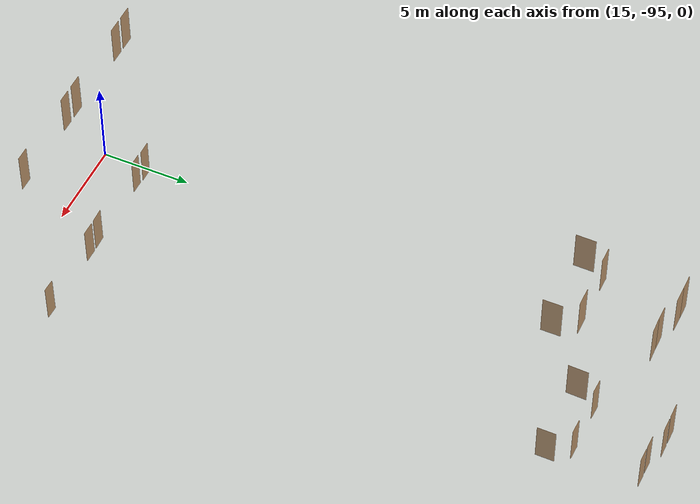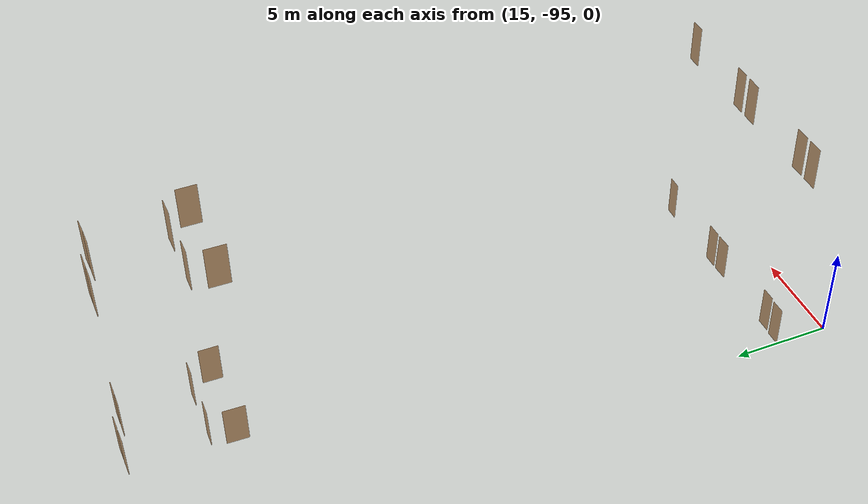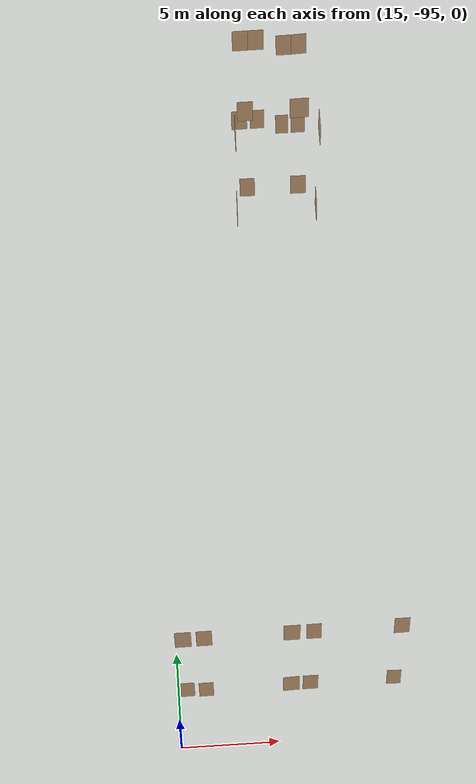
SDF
<sdf version="1.7">
 <world name="sim_world">
  <model name="part5_3">
   <pose>20.173143498738547 -60.075175110173454 0.0 0 0 -3.1320734402905437</pose>
   <link name="right">
    <pose>0 0 1.11 0 0 0</pose>
    <visual name="right_visual">
     <geometry><box><size>0.8412739938981753 0.03 2.2</size></box></geometry>
     <material>
      <ambient>0.5 0.25 0 0.6</ambient>
      <diffuse>0.5 0.25 0 0.6</diffuse>
      <pbr><metal><metalness>0.0</metalness></metal></pbr>
     </material>
    </visual>
    <collision name="right_collision">
     <geometry><box><size>0.8412739938981753 0.03 2.2</size></box></geometry>
     <surface><contact><collide_bitmask>0x02</collide_bitmask></contact></surface>
    </collision>
    <inertial>
     <mass>50.0</mass>
     <inertia><ixx>20.17041666666667</ixx><iyy>23.11559138670578</iyy><izz>2.952674720039113</izz></inertia>
    </inertial>
   </link>
   <joint name="right_joint" type="revolute">
    <parent>world</parent>
    <child>right</child>
    <axis><xyz>0 0 -1</xyz><limit><lower>0</lower><upper>1.57</upper></limit></axis>
    <pose>0.42563699694908763 0 0 0 0 0</pose>
   </joint>
   <plugin name="register_component" filename="libregister_component.so">
    <component name="Door">
     <v_max_door>0.5</v_max_door>
     <a_max_door>0.3</a_max_door>
     <a_nom_door>0.15</a_nom_door>
     <dx_min_door>0.01</dx_min_door>
     <f_max_door>500.0</f_max_door>
     <ros_interface>true</ros_interface>
     <door name="part5_3" type="SwingDoor" left_joint_name="empty_joint" right_joint_name="right_joint"/>
    </component>
   </plugin>
  </model>
  <model name="part5_4">
   <pose>21.1585172209726 -60.06836349378341 0.0 0 0 -3.134354941226034</pose>
   <link name="right">
    <pose>0 0 1.11 0 0 0</pose>
    <visual name="right_visual">
     <geometry><box><size>0.7526642721148585 0.03 2.2</size></box></geometry>
     <material>
      <ambient>0.5 0.25 0 0.6</ambient>
      <diffuse>0.5 0.25 0 0.6</diffuse>
      <pbr><metal><metalness>0.0</metalness></metal></pbr>
     </material>
    </visual>
    <collision name="right_collision">
     <geometry><box><size>0.7526642721148585 0.03 2.2</size></box></geometry>
     <surface><contact><collide_bitmask>0x02</collide_bitmask></contact></surface>
    </collision>
    <inertial>
     <mass>50.0</mass>
     <inertia><ixx>20.17041666666667</ixx><iyy>22.527097943825797</iyy><izz>2.3641812771591244</izz></inertia>
    </inertial>
   </link>
   <joint name="right_joint" type="revolute">
    <parent>world</parent>
    <child>right</child>
    <axis><xyz>0 0 1</xyz><limit><lower>0</lower><upper>1.57</upper></limit></axis>
    <pose>0.38133213605742927 0 0 0 0 0</pose>
   </joint>
   <plugin name="register_component" filename="libregister_component.so">
    <component name="Door">
     <v_max_door>0.5</v_max_door>
     <a_max_door>0.3</a_max_door>
     <a_nom_door>0.15</a_nom_door>
     <dx_min_door>0.01</dx_min_door>
     <f_max_door>500.0</f_max_door>
     <ros_interface>true</ros_interface>
     <door name="part5_4" type="SwingDoor" left_joint_name="empty_joint" right_joint_name="right_joint"/>
    </component>
   </plugin>
  </model>
  <model name="part5_5">
   <pose>22.475253214732483 -60.4579173479677 0.0 0 0 3.1318064891371975</pose>
   <link name="right">
    <pose>0 0 1.11 0 0 0</pose>
    <visual name="right_visual">
     <geometry><box><size>0.6753985658869284 0.03 2.2</size></box></geometry>
     <material>
      <ambient>0.5 0.25 0 0.6</ambient>
      <diffuse>0.5 0.25 0 0.6</diffuse>
      <pbr><metal><metalness>0.0</metalness></metal></pbr>
     </material>
    </visual>
    <collision name="right_collision">
     <geometry><box><size>0.6753985658869284 0.03 2.2</size></box></geometry>
     <surface><contact><collide_bitmask>0x02</collide_bitmask></contact></surface>
    </collision>
    <inertial>
     <mass>50.0</mass>
     <inertia><ixx>20.17041666666667</ixx><iyy>22.067346761675502</iyy><izz>1.9044300950088315</izz></inertia>
    </inertial>
   </link>
   <joint name="right_joint" type="revolute">
    <parent>world</parent>
    <child>right</child>
    <axis><xyz>0 0 -1</xyz><limit><lower>0</lower><upper>1.57</upper></limit></axis>
    <pose>0.3426992829434642 0 0 0 0 0</pose>
   </joint>
   <plugin name="register_component" filename="libregister_component.so">
    <component name="Door">
     <v_max_door>0.5</v_max_door>
     <a_max_door>0.3</a_max_door>
     <a_nom_door>0.15</a_nom_door>
     <dx_min_door>0.01</dx_min_door>
     <f_max_door>500.0</f_max_door>
     <ros_interface>true</ros_interface>
     <door name="part5_5" type="SwingDoor" left_joint_name="empty_joint" right_joint_name="right_joint"/>
    </component>
   </plugin>
  </model>
  <model name="part5_6">
   <pose>23.359848711436015 -60.46050881097593 0.0 0 0 -3.1395744714216227</pose>
   <link name="right">
    <pose>0 0 1.11 0 0 0</pose>
    <visual name="right_visual">
     <geometry><box><size>0.7453287625419571 0.03 2.2</size></box></geometry>
     <material>
      <ambient>0.5 0.25 0 0.6</ambient>
      <diffuse>0.5 0.25 0 0.6</diffuse>
      <pbr><metal><metalness>0.0</metalness></metal></pbr>
     </material>
    </visual>
    <collision name="right_collision">
     <geometry><box><size>0.7453287625419571 0.03 2.2</size></box></geometry>
     <surface><contact><collide_bitmask>0x02</collide_bitmask></contact></surface>
    </collision>
    <inertial>
     <mass>50.0</mass>
     <inertia><ixx>20.17041666666667</ixx><iyy>22.481312351134694</iyy><izz>2.3183956844680216</izz></inertia>
    </inertial>
   </link>
   <joint name="right_joint" type="revolute">
    <parent>world</parent>
    <child>right</child>
    <axis><xyz>0 0 1</xyz><limit><lower>0</lower><upper>1.57</upper></limit></axis>
    <pose>0.37766438127097857 0 0 0 0 0</pose>
   </joint>
   <plugin name="register_component" filename="libregister_component.so">
    <component name="Door">
     <v_max_door>0.5</v_max_door>
     <a_max_door>0.3</a_max_door>
     <a_nom_door>0.15</a_nom_door>
     <dx_min_door>0.01</dx_min_door>
     <f_max_door>500.0</f_max_door>
     <ros_interface>true</ros_interface>
     <door name="part5_6" type="SwingDoor" left_joint_name="empty_joint" right_joint_name="right_joint"/>
    </component>
   </plugin>
  </model>
  <model name="part5_2">
   <pose>20.356254830741022 -64.11535419415983 0.0 0 0 3.1157790251669653</pose>
   <link name="right">
    <pose>0 0 1.11 0 0 0</pose>
    <visual name="right_visual">
     <geometry><box><size>0.8000579363908907 0.03 2.2</size></box></geometry>
     <material>
      <ambient>0.5 0.25 0 0.6</ambient>
      <diffuse>0.5 0.25 0 0.6</diffuse>
      <pbr><metal><metalness>0.0</metalness></metal></pbr>
     </material>
    </visual>
    <collision name="right_collision">
     <geometry><box><size>0.8000579363908907 0.03 2.2</size></box></geometry>
     <surface><contact><collide_bitmask>0x02</collide_bitmask></contact></surface>
    </collision>
    <inertial>
     <mass>50.0</mass>
     <inertia><ixx>20.17041666666667</ixx><iyy>22.833719589925213</iyy><izz>2.6708029232585444</izz></inertia>
    </inertial>
   </link>
   <joint name="right_joint" type="revolute">
    <parent>world</parent>
    <child>right</child>
    <axis><xyz>0 0 1</xyz><limit><lower>0</lower><upper>1.57</upper></limit></axis>
    <pose>0.40502896819544537 0 0 0 0 0</pose>
   </joint>
   <plugin name="register_component" filename="libregister_component.so">
    <component name="Door">
     <v_max_door>0.5</v_max_door>
     <a_max_door>0.3</a_max_door>
     <a_nom_door>0.15</a_nom_door>
     <dx_min_door>0.01</dx_min_door>
     <f_max_door>500.0</f_max_door>
     <ros_interface>true</ros_interface>
     <door name="part5_2" type="SwingDoor" left_joint_name="empty_joint" right_joint_name="right_joint"/>
    </component>
   </plugin>
  </model>
  <model name="part5_1">
   <pose>19.7338704610806 -65.35273365350986 0.0 0 0 1.5427332224343389</pose>
   <link name="right">
    <pose>0 0 1.11 0 0 0</pose>
    <visual name="right_visual">
     <geometry><box><size>1.1234371194524144 0.03 2.2</size></box></geometry>
     <material>
      <ambient>0.5 0.25 0 0.6</ambient>
      <diffuse>0.5 0.25 0 0.6</diffuse>
      <pbr><metal><metalness>0.0</metalness></metal></pbr>
     </material>
    </visual>
    <collision name="right_collision">
     <geometry><box><size>1.1234371194524144 0.03 2.2</size></box></geometry>
     <surface><contact><collide_bitmask>0x02</collide_bitmask></contact></surface>
    </collision>
    <inertial>
     <mass>50.0</mass>
     <inertia><ixx>20.17041666666667</ixx><iyy>25.42546233901475</iyy><izz>5.262545672348077</izz></inertia>
    </inertial>
   </link>
   <joint name="right_joint" type="revolute">
    <parent>world</parent>
    <child>right</child>
    <axis><xyz>0 0 -1</xyz><limit><lower>0</lower><upper>1.57</upper></limit></axis>
    <pose>0.5667185597262072 0 0 0 0 0</pose>
   </joint>
   <plugin name="register_component" filename="libregister_component.so">
    <component name="Door">
     <v_max_door>0.5</v_max_door>
     <a_max_door>0.3</a_max_door>
     <a_nom_door>0.15</a_nom_door>
     <dx_min_door>0.01</dx_min_door>
     <f_max_door>500.0</f_max_door>
     <ros_interface>true</ros_interface>
     <door name="part5_1" type="SwingDoor" left_joint_name="empty_joint" right_joint_name="right_joint"/>
    </component>
   </plugin>
  </model>
  <model name="part5_7">
   <pose>23.12539752869158 -64.13151272821115 0.0 0 0 3.127977500458686</pose>
   <link name="right">
    <pose>0 0 1.11 0 0 0</pose>
    <visual name="right_visual">
     <geometry><box><size>0.8279786917823205 0.03 2.2</size></box></geometry>
     <material>
      <ambient>0.5 0.25 0 0.6</ambient>
      <diffuse>0.5 0.25 0 0.6</diffuse>
      <pbr><metal><metalness>0.0</metalness></metal></pbr>
     </material>
    </visual>
    <collision name="right_collision">
     <geometry><box><size>0.8279786917823205 0.03 2.2</size></box></geometry>
     <surface><contact><collide_bitmask>0x02</collide_bitmask></contact></surface>
    </collision>
    <inertial>
     <mass>50.0</mass>
     <inertia><ixx>20.17041666666667</ixx><iyy>23.023119641856518</iyy><izz>2.860202975189846</izz></inertia>
    </inertial>
   </link>
   <joint name="right_joint" type="revolute">
    <parent>world</parent>
    <child>right</child>
    <axis><xyz>0 0 -1</xyz><limit><lower>0</lower><upper>1.57</upper></limit></axis>
    <pose>0.41898934589116027 0 0 0 0 0</pose>
   </joint>
   <plugin name="register_component" filename="libregister_component.so">
    <component name="Door">
     <v_max_door>0.5</v_max_door>
     <a_max_door>0.3</a_max_door>
     <a_nom_door>0.15</a_nom_door>
     <dx_min_door>0.01</dx_min_door>
     <f_max_door>500.0</f_max_door>
     <ros_interface>true</ros_interface>
     <door name="part5_7" type="SwingDoor" left_joint_name="empty_joint" right_joint_name="right_joint"/>
    </component>
   </plugin>
  </model>
  <model name="part5_8_end">
   <pose>24.011661831295143 -65.3474063115982 0.0 0 0 1.565736929296682</pose>
   <link name="right">
    <pose>0 0 1.11 0 0 0</pose>
    <visual name="right_visual">
     <geometry><box><size>1.0239347653814936 0.03 2.2</size></box></geometry>
     <material>
      <ambient>0.5 0.25 0 0.6</ambient>
      <diffuse>0.5 0.25 0 0.6</diffuse>
      <pbr><metal><metalness>0.0</metalness></metal></pbr>
     </material>
    </visual>
    <collision name="right_collision">
     <geometry><box><size>1.0239347653814936 0.03 2.2</size></box></geometry>
     <surface><contact><collide_bitmask>0x02</collide_bitmask></contact></surface>
    </collision>
    <inertial>
     <mass>50.0</mass>
     <inertia><ixx>20.17041666666667</ixx><iyy>24.53517668232023</iyy><izz>4.37226001565356</izz></inertia>
    </inertial>
   </link>
   <joint name="right_joint" type="revolute">
    <parent>world</parent>
    <child>right</child>
    <axis><xyz>0 0 1</xyz><limit><lower>0</lower><upper>1.57</upper></limit></axis>
    <pose>0.5169673826907468 0 0 0 0 0</pose>
   </joint>
   <plugin name="register_component" filename="libregister_component.so">
    <component name="Door">
     <v_max_door>0.5</v_max_door>
     <a_max_door>0.3</a_max_door>
     <a_nom_door>0.15</a_nom_door>
     <dx_min_door>0.01</dx_min_door>
     <f_max_door>500.0</f_max_door>
     <ros_interface>true</ros_interface>
     <door name="part5_8_end" type="SwingDoor" left_joint_name="empty_joint" right_joint_name="right_joint"/>
    </component>
   </plugin>
  </model>
  <model name="part4_5">
   <pose>26.091162467950667 -92.28202981543757 0.0 0 0 3.1147662105068084</pose>
   <link name="right">
    <pose>0 0 1.11 0 0 0</pose>
    <visual name="right_visual">
     <geometry><box><size>0.7162400117105202 0.03 2.2</size></box></geometry>
     <material>
      <ambient>0.5 0.25 0 0.6</ambient>
      <diffuse>0.5 0.25 0 0.6</diffuse>
      <pbr><metal><metalness>0.0</metalness></metal></pbr>
     </material>
    </visual>
    <collision name="right_collision">
     <geometry><box><size>0.7162400117105202 0.03 2.2</size></box></geometry>
     <surface><contact><collide_bitmask>0x02</collide_bitmask></contact></surface>
    </collision>
    <inertial>
     <mass>50.0</mass>
     <inertia><ixx>20.17041666666667</ixx><iyy>22.30416564322953</iyy><izz>2.141248976562859</izz></inertia>
    </inertial>
   </link>
   <joint name="right_joint" type="revolute">
    <parent>world</parent>
    <child>right</child>
    <axis><xyz>0 0 1</xyz><limit><lower>0</lower><upper>1.57</upper></limit></axis>
    <pose>0.3631200058552601 0 0 0 0 0</pose>
   </joint>
   <plugin name="register_component" filename="libregister_component.so">
    <component name="Door">
     <v_max_door>0.5</v_max_door>
     <a_max_door>0.3</a_max_door>
     <a_nom_door>0.15</a_nom_door>
     <dx_min_door>0.01</dx_min_door>
     <f_max_door>500.0</f_max_door>
     <ros_interface>true</ros_interface>
     <door name="part4_5" type="SwingDoor" left_joint_name="empty_joint" right_joint_name="right_joint"/>
    </component>
   </plugin>
  </model>
  <model name="part4_4">
   <pose>21.79289613303953 -92.27025189687387 0.0 0 0 3.1364429718043936</pose>
   <link name="right">
    <pose>0 0 1.11 0 0 0</pose>
    <visual name="right_visual">
     <geometry><box><size>0.7814577387012437 0.03 2.2</size></box></geometry>
     <material>
      <ambient>0.5 0.25 0 0.6</ambient>
      <diffuse>0.5 0.25 0 0.6</diffuse>
      <pbr><metal><metalness>0.0</metalness></metal></pbr>
     </material>
    </visual>
    <collision name="right_collision">
     <geometry><box><size>0.7814577387012437 0.03 2.2</size></box></geometry>
     <surface><contact><collide_bitmask>0x02</collide_bitmask></contact></surface>
    </collision>
    <inertial>
     <mass>50.0</mass>
     <inertia><ixx>20.17041666666667</ixx><iyy>22.71115082240026</iyy><izz>2.548234155733589</izz></inertia>
    </inertial>
   </link>
   <joint name="right_joint" type="revolute">
    <parent>world</parent>
    <child>right</child>
    <axis><xyz>0 0 -1</xyz><limit><lower>0</lower><upper>1.57</upper></limit></axis>
    <pose>0.39572886935062185 0 0 0 0 0</pose>
   </joint>
   <plugin name="register_component" filename="libregister_component.so">
    <component name="Door">
     <v_max_door>0.5</v_max_door>
     <a_max_door>0.3</a_max_door>
     <a_nom_door>0.15</a_nom_door>
     <dx_min_door>0.01</dx_min_door>
     <f_max_door>500.0</f_max_door>
     <ros_interface>true</ros_interface>
     <door name="part4_4" type="SwingDoor" left_joint_name="empty_joint" right_joint_name="right_joint"/>
    </component>
   </plugin>
  </model>
  <model name="part4_2">
   <pose>16.429426178272443 -92.29821241880475 0.0 0 0 -3.135646432111975</pose>
   <link name="right">
    <pose>0 0 1.11 0 0 0</pose>
    <visual name="right_visual">
     <geometry><box><size>0.7429015106224636 0.03 2.2</size></box></geometry>
     <material>
      <ambient>0.5 0.25 0 0.6</ambient>
      <diffuse>0.5 0.25 0 0.6</diffuse>
      <pbr><metal><metalness>0.0</metalness></metal></pbr>
     </material>
    </visual>
    <collision name="right_collision">
     <geometry><box><size>0.7429015106224636 0.03 2.2</size></box></geometry>
     <surface><contact><collide_bitmask>0x02</collide_bitmask></contact></surface>
    </collision>
    <inertial>
     <mass>50.0</mass>
     <inertia><ixx>20.17041666666667</ixx><iyy>22.466261060354746</iyy><izz>2.3033443936880764</izz></inertia>
    </inertial>
   </link>
   <joint name="right_joint" type="revolute">
    <parent>world</parent>
    <child>right</child>
    <axis><xyz>0 0 -1</xyz><limit><lower>0</lower><upper>1.57</upper></limit></axis>
    <pose>0.3764507553112318 0 0 0 0 0</pose>
   </joint>
   <plugin name="register_component" filename="libregister_component.so">
    <component name="Door">
     <v_max_door>0.5</v_max_door>
     <a_max_door>0.3</a_max_door>
     <a_nom_door>0.15</a_nom_door>
     <dx_min_door>0.01</dx_min_door>
     <f_max_door>500.0</f_max_door>
     <ros_interface>true</ros_interface>
     <door name="part4_2" type="SwingDoor" left_joint_name="empty_joint" right_joint_name="right_joint"/>
    </component>
   </plugin>
  </model>
  <model name="part4_1">
   <pose>15.451168950429413 -92.25228014102731 0.0 0 0 -3.133526279514801</pose>
   <link name="right">
    <pose>0 0 1.11 0 0 0</pose>
    <visual name="right_visual">
     <geometry><box><size>0.7538886599244344 0.03 2.2</size></box></geometry>
     <material>
      <ambient>0.5 0.25 0 0.6</ambient>
      <diffuse>0.5 0.25 0 0.6</diffuse>
      <pbr><metal><metalness>0.0</metalness></metal></pbr>
     </material>
    </visual>
    <collision name="right_collision">
     <geometry><box><size>0.7538886599244344 0.03 2.2</size></box></geometry>
     <surface><contact><collide_bitmask>0x02</collide_bitmask></contact></surface>
    </collision>
    <inertial>
     <mass>50.0</mass>
     <inertia><ixx>20.17041666666667</ixx><iyy>22.534783798177752</iyy><izz>2.3718671315110815</izz></inertia>
    </inertial>
   </link>
   <joint name="right_joint" type="revolute">
    <parent>world</parent>
    <child>right</child>
    <axis><xyz>0 0 1</xyz><limit><lower>0</lower><upper>1.57</upper></limit></axis>
    <pose>0.3819443299622172 0 0 0 0 0</pose>
   </joint>
   <plugin name="register_component" filename="libregister_component.so">
    <component name="Door">
     <v_max_door>0.5</v_max_door>
     <a_max_door>0.3</a_max_door>
     <a_nom_door>0.15</a_nom_door>
     <dx_min_door>0.01</dx_min_door>
     <f_max_door>500.0</f_max_door>
     <ros_interface>true</ros_interface>
     <door name="part4_1" type="SwingDoor" left_joint_name="empty_joint" right_joint_name="right_joint"/>
    </component>
   </plugin>
  </model>
  <model name="part4_3">
   <pose>20.81063537565747 -92.2820940002799 0.0 0 0 -3.1083344110460236</pose>
   <link name="right">
    <pose>0 0 1.11 0 0 0</pose>
    <visual name="right_visual">
     <geometry><box><size>0.8248325236321878 0.03 2.2</size></box></geometry>
     <material>
      <ambient>0.5 0.25 0 0.6</ambient>
      <diffuse>0.5 0.25 0 0.6</diffuse>
      <pbr><metal><metalness>0.0</metalness></metal></pbr>
     </material>
    </visual>
    <collision name="right_collision">
     <geometry><box><size>0.8248325236321878 0.03 2.2</size></box></geometry>
     <surface><contact><collide_bitmask>0x02</collide_bitmask></contact></surface>
    </collision>
    <inertial>
     <mass>50.0</mass>
     <inertia><ixx>20.17041666666667</ixx><iyy>23.001452883506023</iyy><izz>2.838536216839349</izz></inertia>
    </inertial>
   </link>
   <joint name="right_joint" type="revolute">
    <parent>world</parent>
    <child>right</child>
    <axis><xyz>0 0 1</xyz><limit><lower>0</lower><upper>1.57</upper></limit></axis>
    <pose>0.4174162618160939 0 0 0 0 0</pose>
   </joint>
   <plugin name="register_component" filename="libregister_component.so">
    <component name="Door">
     <v_max_door>0.5</v_max_door>
     <a_max_door>0.3</a_max_door>
     <a_nom_door>0.15</a_nom_door>
     <dx_min_door>0.01</dx_min_door>
     <f_max_door>500.0</f_max_door>
     <ros_interface>true</ros_interface>
     <door name="part4_3" type="SwingDoor" left_joint_name="empty_joint" right_joint_name="right_joint"/>
    </component>
   </plugin>
  </model>
  <model name="L3_part1_18_end">
   <pose>15.452869970543336 -92.76079301687074 10.0 0 0 -3.1397299982213527</pose>
   <link name="right">
    <pose>0 0 1.11 0 0 0</pose>
    <visual name="right_visual">
     <geometry><box><size>0.8010010356325225 0.03 2.2</size></box></geometry>
     <material>
      <ambient>0.5 0.25 0 0.6</ambient>
      <diffuse>0.5 0.25 0 0.6</diffuse>
      <pbr><metal><metalness>0.0</metalness></metal></pbr>
     </material>
    </visual>
    <collision name="right_collision">
     <geometry><box><size>0.8010010356325225 0.03 2.2</size></box></geometry>
     <surface><contact><collide_bitmask>0x02</collide_bitmask></contact></surface>
    </collision>
    <inertial>
     <mass>50.0</mass>
     <inertia><ixx>20.17041666666667</ixx><iyy>22.840011079518227</iyy><izz>2.677094412851557</izz></inertia>
    </inertial>
   </link>
   <joint name="right_joint" type="revolute">
    <parent>world</parent>
    <child>right</child>
    <axis><xyz>0 0 1</xyz><limit><lower>0</lower><upper>1.57</upper></limit></axis>
    <pose>0.40550051781626123 0 0 0 0 0</pose>
   </joint>
   <plugin name="register_component" filename="libregister_component.so">
    <component name="Door">
     <v_max_door>0.5</v_max_door>
     <a_max_door>0.3</a_max_door>
     <a_nom_door>0.15</a_nom_door>
     <dx_min_door>0.01</dx_min_door>
     <f_max_door>500.0</f_max_door>
     <ros_interface>true</ros_interface>
     <door name="L3_part1_18_end" type="SwingDoor" left_joint_name="empty_joint" right_joint_name="right_joint"/>
    </component>
   </plugin>
  </model>
  <model name="L3_part1_17">
   <pose>16.489145478803934 -92.75886279049976 10.0 0 0 -3.1397299982213265</pose>
   <link name="right">
    <pose>0 0 1.11 0 0 0</pose>
    <visual name="right_visual">
     <geometry><box><size>0.770966353774227 0.03 2.2</size></box></geometry>
     <material>
      <ambient>0.5 0.25 0 0.6</ambient>
      <diffuse>0.5 0.25 0 0.6</diffuse>
      <pbr><metal><metalness>0.0</metalness></metal></pbr>
     </material>
    </visual>
    <collision name="right_collision">
     <geometry><box><size>0.770966353774227 0.03 2.2</size></box></geometry>
     <surface><contact><collide_bitmask>0x02</collide_bitmask></contact></surface>
    </collision>
    <inertial>
     <mass>50.0</mass>
     <inertia><ixx>20.17041666666667</ixx><iyy>22.64328799438303</iyy><izz>2.4803713277163606</izz></inertia>
    </inertial>
   </link>
   <joint name="right_joint" type="revolute">
    <parent>world</parent>
    <child>right</child>
    <axis><xyz>0 0 -1</xyz><limit><lower>0</lower><upper>1.57</upper></limit></axis>
    <pose>0.3904831768871135 0 0 0 0 0</pose>
   </joint>
   <plugin name="register_component" filename="libregister_component.so">
    <component name="Door">
     <v_max_door>0.5</v_max_door>
     <a_max_door>0.3</a_max_door>
     <a_nom_door>0.15</a_nom_door>
     <dx_min_door>0.01</dx_min_door>
     <f_max_door>500.0</f_max_door>
     <ros_interface>true</ros_interface>
     <door name="L3_part1_17" type="SwingDoor" left_joint_name="empty_joint" right_joint_name="right_joint"/>
    </component>
   </plugin>
  </model>
  <model name="L3_part1_16">
   <pose>20.806401356582032 -92.75082122136195 10.0 0 0 -3.139729998221315</pose>
   <link name="right">
    <pose>0 0 1.11 0 0 0</pose>
    <visual name="right_visual">
     <geometry><box><size>0.7980282645394955 0.03 2.2</size></box></geometry>
     <material>
      <ambient>0.5 0.25 0 0.6</ambient>
      <diffuse>0.5 0.25 0 0.6</diffuse>
      <pbr><metal><metalness>0.0</metalness></metal></pbr>
     </material>
    </visual>
    <collision name="right_collision">
     <geometry><box><size>0.7980282645394955 0.03 2.2</size></box></geometry>
     <surface><contact><collide_bitmask>0x02</collide_bitmask></contact></surface>
    </collision>
    <inertial>
     <mass>50.0</mass>
     <inertia><ixx>20.17041666666667</ixx><iyy>22.820204629183</iyy><izz>2.657287962516329</izz></inertia>
    </inertial>
   </link>
   <joint name="right_joint" type="revolute">
    <parent>world</parent>
    <child>right</child>
    <axis><xyz>0 0 1</xyz><limit><lower>0</lower><upper>1.57</upper></limit></axis>
    <pose>0.40401413226974775 0 0 0 0 0</pose>
   </joint>
   <plugin name="register_component" filename="libregister_component.so">
    <component name="Door">
     <v_max_door>0.5</v_max_door>
     <a_max_door>0.3</a_max_door>
     <a_nom_door>0.15</a_nom_door>
     <dx_min_door>0.01</dx_min_door>
     <f_max_door>500.0</f_max_door>
     <ros_interface>true</ros_interface>
     <door name="L3_part1_16" type="SwingDoor" left_joint_name="empty_joint" right_joint_name="right_joint"/>
    </component>
   </plugin>
  </model>
  <model name="L3_part1_15">
   <pose>21.884957997748018 -92.7488122397207 10.0 0 0 -3.139729998221307</pose>
   <link name="right">
    <pose>0 0 1.11 0 0 0</pose>
    <visual name="right_visual">
     <geometry><box><size>0.7243067727055034 0.03 2.2</size></box></geometry>
     <material>
      <ambient>0.5 0.25 0 0.6</ambient>
      <diffuse>0.5 0.25 0 0.6</diffuse>
      <pbr><metal><metalness>0.0</metalness></metal></pbr>
     </material>
    </visual>
    <collision name="right_collision">
     <geometry><box><size>0.7243067727055034 0.03 2.2</size></box></geometry>
     <surface><contact><collide_bitmask>0x02</collide_bitmask></contact></surface>
    </collision>
    <inertial>
     <mass>50.0</mass>
     <inertia><ixx>20.17041666666667</ixx><iyy>22.352584587446096</iyy><izz>2.189667920779424</izz></inertia>
    </inertial>
   </link>
   <joint name="right_joint" type="revolute">
    <parent>world</parent>
    <child>right</child>
    <axis><xyz>0 0 -1</xyz><limit><lower>0</lower><upper>1.57</upper></limit></axis>
    <pose>0.3671533863527517 0 0 0 0 0</pose>
   </joint>
   <plugin name="register_component" filename="libregister_component.so">
    <component name="Door">
     <v_max_door>0.5</v_max_door>
     <a_max_door>0.3</a_max_door>
     <a_nom_door>0.15</a_nom_door>
     <dx_min_door>0.01</dx_min_door>
     <f_max_door>500.0</f_max_door>
     <ros_interface>true</ros_interface>
     <door name="L3_part1_15" type="SwingDoor" left_joint_name="empty_joint" right_joint_name="right_joint"/>
    </component>
   </plugin>
  </model>
  <model name="L3_part1_14">
   <pose>26.206535695568988 -92.74076262051227 10.0 0 0 -3.1397299982213407</pose>
   <link name="right">
    <pose>0 0 1.11 0 0 0</pose>
    <visual name="right_visual">
     <geometry><box><size>0.7471841850300569 0.03 2.2</size></box></geometry>
     <material>
      <ambient>0.5 0.25 0 0.6</ambient>
      <diffuse>0.5 0.25 0 0.6</diffuse>
      <pbr><metal><metalness>0.0</metalness></metal></pbr>
     </material>
    </visual>
    <collision name="right_collision">
     <geometry><box><size>0.7471841850300569 0.03 2.2</size></box></geometry>
     <surface><contact><collide_bitmask>0x02</collide_bitmask></contact></surface>
    </collision>
    <inertial>
     <mass>50.0</mass>
     <inertia><ixx>20.17041666666667</ixx><iyy>22.4928508598293</iyy><izz>2.3299341931626265</izz></inertia>
    </inertial>
   </link>
   <joint name="right_joint" type="revolute">
    <parent>world</parent>
    <child>right</child>
    <axis><xyz>0 0 1</xyz><limit><lower>0</lower><upper>1.57</upper></limit></axis>
    <pose>0.37859209251502846 0 0 0 0 0</pose>
   </joint>
   <plugin name="register_component" filename="libregister_component.so">
    <component name="Door">
     <v_max_door>0.5</v_max_door>
     <a_max_door>0.3</a_max_door>
     <a_nom_door>0.15</a_nom_door>
     <dx_min_door>0.01</dx_min_door>
     <f_max_door>500.0</f_max_door>
     <ros_interface>true</ros_interface>
     <door name="L3_part1_14" type="SwingDoor" left_joint_name="empty_joint" right_joint_name="right_joint"/>
    </component>
   </plugin>
  </model>
  <model name="L3_part2_6">
   <pose>20.321267090054047 -64.39701339062124 10.0 0 0 -3.1397299982213274</pose>
   <link name="right">
    <pose>0 0 1.11 0 0 0</pose>
    <visual name="right_visual">
     <geometry><box><size>0.8150086037719204 0.03 2.2</size></box></geometry>
     <material>
      <ambient>0.5 0.25 0 0.6</ambient>
      <diffuse>0.5 0.25 0 0.6</diffuse>
      <pbr><metal><metalness>0.0</metalness></metal></pbr>
     </material>
    </visual>
    <collision name="right_collision">
     <geometry><box><size>0.8150086037719204 0.03 2.2</size></box></geometry>
     <surface><contact><collide_bitmask>0x02</collide_bitmask></contact></surface>
    </collision>
    <inertial>
     <mass>50.0</mass>
     <inertia><ixx>20.17041666666667</ixx><iyy>22.934329267592737</iyy><izz>2.7714126009260633</izz></inertia>
    </inertial>
   </link>
   <joint name="right_joint" type="revolute">
    <parent>world</parent>
    <child>right</child>
    <axis><xyz>0 0 1</xyz><limit><lower>0</lower><upper>1.57</upper></limit></axis>
    <pose>0.4125043018859602 0 0 0 0 0</pose>
   </joint>
   <plugin name="register_component" filename="libregister_component.so">
    <component name="Door">
     <v_max_door>0.5</v_max_door>
     <a_max_door>0.3</a_max_door>
     <a_nom_door>0.15</a_nom_door>
     <dx_min_door>0.01</dx_min_door>
     <f_max_door>500.0</f_max_door>
     <ros_interface>true</ros_interface>
     <door name="L3_part2_6" type="SwingDoor" left_joint_name="empty_joint" right_joint_name="right_joint"/>
    </component>
   </plugin>
  </model>
  <model name="L3_part2_7">
   <pose>23.153132032602024 -64.38655239403809 10.0 0 0 -3.129202172558225</pose>
   <link name="right">
    <pose>0 0 1.11 0 0 0</pose>
    <visual name="right_visual">
     <geometry><box><size>0.975253558978272 0.03 2.2</size></box></geometry>
     <material>
      <ambient>0.5 0.25 0 0.6</ambient>
      <diffuse>0.5 0.25 0 0.6</diffuse>
      <pbr><metal><metalness>0.0</metalness></metal></pbr>
     </material>
    </visual>
    <collision name="right_collision">
     <geometry><box><size>0.975253558978272 0.03 2.2</size></box></geometry>
     <surface><contact><collide_bitmask>0x02</collide_bitmask></contact></surface>
    </collision>
    <inertial>
     <mass>50.0</mass>
     <inertia><ixx>20.17041666666667</ixx><iyy>24.129664601249114</iyy><izz>3.966747934582442</izz></inertia>
    </inertial>
   </link>
   <joint name="right_joint" type="revolute">
    <parent>world</parent>
    <child>right</child>
    <axis><xyz>0 0 -1</xyz><limit><lower>0</lower><upper>1.57</upper></limit></axis>
    <pose>0.492626779489136 0 0 0 0 0</pose>
   </joint>
   <plugin name="register_component" filename="libregister_component.so">
    <component name="Door">
     <v_max_door>0.5</v_max_door>
     <a_max_door>0.3</a_max_door>
     <a_nom_door>0.15</a_nom_door>
     <dx_min_door>0.01</dx_min_door>
     <f_max_door>500.0</f_max_door>
     <ros_interface>true</ros_interface>
     <door name="L3_part2_7" type="SwingDoor" left_joint_name="empty_joint" right_joint_name="right_joint"/>
    </component>
   </plugin>
  </model>
  <model name="L3_part2_8_end">
   <pose>24.11769012062339 -65.5646974998315 10.0 0 0 1.574233312952306</pose>
   <link name="right">
    <pose>0 0 1.11 0 0 0</pose>
    <visual name="right_visual">
     <geometry><box><size>1.016237397086479 0.03 2.2</size></box></geometry>
     <material>
      <ambient>0.5 0.25 0 0.6</ambient>
      <diffuse>0.5 0.25 0 0.6</diffuse>
      <pbr><metal><metalness>0.0</metalness></metal></pbr>
     </material>
    </visual>
    <collision name="right_collision">
     <geometry><box><size>1.016237397086479 0.03 2.2</size></box></geometry>
     <surface><contact><collide_bitmask>0x02</collide_bitmask></contact></surface>
    </collision>
    <inertial>
     <mass>50.0</mass>
     <inertia><ixx>20.17041666666667</ixx><iyy>24.469743530154595</iyy><izz>4.306826863487926</izz></inertia>
    </inertial>
   </link>
   <joint name="right_joint" type="revolute">
    <parent>world</parent>
    <child>right</child>
    <axis><xyz>0 0 1</xyz><limit><lower>0</lower><upper>1.57</upper></limit></axis>
    <pose>0.5131186985432395 0 0 0 0 0</pose>
   </joint>
   <plugin name="register_component" filename="libregister_component.so">
    <component name="Door">
     <v_max_door>0.5</v_max_door>
     <a_max_door>0.3</a_max_door>
     <a_nom_door>0.15</a_nom_door>
     <dx_min_door>0.01</dx_min_door>
     <f_max_door>500.0</f_max_door>
     <ros_interface>true</ros_interface>
     <door name="L3_part2_8_end" type="SwingDoor" left_joint_name="empty_joint" right_joint_name="right_joint"/>
    </component>
   </plugin>
  </model>
  <model name="L3_part2_2">
   <pose>20.319034689383898 -60.31445868676581 10.0 0 0 -3.1397299982213234</pose>
   <link name="right">
    <pose>0 0 1.11 0 0 0</pose>
    <visual name="right_visual">
     <geometry><box><size>0.8039414939962682 0.03 2.2</size></box></geometry>
     <material>
      <ambient>0.5 0.25 0 0.6</ambient>
      <diffuse>0.5 0.25 0 0.6</diffuse>
      <pbr><metal><metalness>0.0</metalness></metal></pbr>
     </material>
    </visual>
    <collision name="right_collision">
     <geometry><box><size>0.8039414939962682 0.03 2.2</size></box></geometry>
     <surface><contact><collide_bitmask>0x02</collide_bitmask></contact></surface>
    </collision>
    <inertial>
     <mass>50.0</mass>
     <inertia><ixx>20.17041666666667</ixx><iyy>22.85967469070397</iyy><izz>2.6967580240372993</izz></inertia>
    </inertial>
   </link>
   <joint name="right_joint" type="revolute">
    <parent>world</parent>
    <child>right</child>
    <axis><xyz>0 0 -1</xyz><limit><lower>0</lower><upper>1.57</upper></limit></axis>
    <pose>0.4069707469981341 0 0 0 0 0</pose>
   </joint>
   <plugin name="register_component" filename="libregister_component.so">
    <component name="Door">
     <v_max_door>0.5</v_max_door>
     <a_max_door>0.3</a_max_door>
     <a_nom_door>0.15</a_nom_door>
     <dx_min_door>0.01</dx_min_door>
     <f_max_door>500.0</f_max_door>
     <ros_interface>true</ros_interface>
     <door name="L3_part2_2" type="SwingDoor" left_joint_name="empty_joint" right_joint_name="right_joint"/>
    </component>
   </plugin>
  </model>
  <model name="L3_part2_3">
   <pose>21.144518473908697 -60.31292109318477 10.0 0 0 -3.1397299982213354</pose>
   <link name="right">
    <pose>0 0 1.11 0 0 0</pose>
    <visual name="right_visual">
     <geometry><box><size>0.8270289390610926 0.03 2.2</size></box></geometry>
     <material>
      <ambient>0.5 0.25 0 0.6</ambient>
      <diffuse>0.5 0.25 0 0.6</diffuse>
      <pbr><metal><metalness>0.0</metalness></metal></pbr>
     </material>
    </visual>
    <collision name="right_collision">
     <geometry><box><size>0.8270289390610926 0.03 2.2</size></box></geometry>
     <surface><contact><collide_bitmask>0x02</collide_bitmask></contact></surface>
    </collision>
    <inertial>
     <mass>50.0</mass>
     <inertia><ixx>20.17041666666667</ixx><iyy>23.01657027518549</iyy><izz>2.853653608518819</izz></inertia>
    </inertial>
   </link>
   <joint name="right_joint" type="revolute">
    <parent>world</parent>
    <child>right</child>
    <axis><xyz>0 0 1</xyz><limit><lower>0</lower><upper>1.57</upper></limit></axis>
    <pose>0.41851446953054633 0 0 0 0 0</pose>
   </joint>
   <plugin name="register_component" filename="libregister_component.so">
    <component name="Door">
     <v_max_door>0.5</v_max_door>
     <a_max_door>0.3</a_max_door>
     <a_nom_door>0.15</a_nom_door>
     <dx_min_door>0.01</dx_min_door>
     <f_max_door>500.0</f_max_door>
     <ros_interface>true</ros_interface>
     <door name="L3_part2_3" type="SwingDoor" left_joint_name="empty_joint" right_joint_name="right_joint"/>
    </component>
   </plugin>
  </model>
  <model name="L3_part2_4">
   <pose>22.56772197031259 -60.709203800124655 10.0 0 0 -3.1397299982213274</pose>
   <link name="right">
    <pose>0 0 1.11 0 0 0</pose>
    <visual name="right_visual">
     <geometry><box><size>0.7779620596616056 0.03 2.2</size></box></geometry>
     <material>
      <ambient>0.5 0.25 0 0.6</ambient>
      <diffuse>0.5 0.25 0 0.6</diffuse>
      <pbr><metal><metalness>0.0</metalness></metal></pbr>
     </material>
    </visual>
    <collision name="right_collision">
     <geometry><box><size>0.7779620596616056 0.03 2.2</size></box></geometry>
     <surface><contact><collide_bitmask>0x02</collide_bitmask></contact></surface>
    </collision>
    <inertial>
     <mass>50.0</mass>
     <inertia><ixx>20.17041666666667</ixx><iyy>22.688437359470534</iyy><izz>2.525520692803865</izz></inertia>
    </inertial>
   </link>
   <joint name="right_joint" type="revolute">
    <parent>world</parent>
    <child>right</child>
    <axis><xyz>0 0 -1</xyz><limit><lower>0</lower><upper>1.57</upper></limit></axis>
    <pose>0.3939810298308028 0 0 0 0 0</pose>
   </joint>
   <plugin name="register_component" filename="libregister_component.so">
    <component name="Door">
     <v_max_door>0.5</v_max_door>
     <a_max_door>0.3</a_max_door>
     <a_nom_door>0.15</a_nom_door>
     <dx_min_door>0.01</dx_min_door>
     <f_max_door>500.0</f_max_door>
     <ros_interface>true</ros_interface>
     <door name="L3_part2_4" type="SwingDoor" left_joint_name="empty_joint" right_joint_name="right_joint"/>
    </component>
   </plugin>
  </model>
  <model name="L3_part2_5">
   <pose>23.36211713531116 -60.692658277836244 10.0 0 0 0.039467722700800484</pose>
   <link name="right">
    <pose>0 0 1.11 0 0 0</pose>
    <visual name="right_visual">
     <geometry><box><size>0.7914537689454046 0.03 2.2</size></box></geometry>
     <material>
      <ambient>0.5 0.25 0 0.6</ambient>
      <diffuse>0.5 0.25 0 0.6</diffuse>
      <pbr><metal><metalness>0.0</metalness></metal></pbr>
     </material>
    </visual>
    <collision name="right_collision">
     <geometry><box><size>0.7914537689454046 0.03 2.2</size></box></geometry>
     <surface><contact><collide_bitmask>0x02</collide_bitmask></contact></surface>
    </collision>
    <inertial>
     <mass>50.0</mass>
     <inertia><ixx>20.17041666666667</ixx><iyy>22.776662784907863</iyy><izz>2.613746118241192</izz></inertia>
    </inertial>
   </link>
   <joint name="right_joint" type="revolute">
    <parent>world</parent>
    <child>right</child>
    <axis><xyz>0 0 1</xyz><limit><lower>0</lower><upper>1.57</upper></limit></axis>
    <pose>0.4007268844727023 0 0 0 0 0</pose>
   </joint>
   <plugin name="register_component" filename="libregister_component.so">
    <component name="Door">
     <v_max_door>0.5</v_max_door>
     <a_max_door>0.3</a_max_door>
     <a_nom_door>0.15</a_nom_door>
     <dx_min_door>0.01</dx_min_door>
     <f_max_door>500.0</f_max_door>
     <ros_interface>true</ros_interface>
     <door name="L3_part2_5" type="SwingDoor" left_joint_name="empty_joint" right_joint_name="right_joint"/>
    </component>
   </plugin>
  </model>
  <model name="L3_part2_1">
   <pose>19.74352379280381 -65.61634616089276 10.0 0 0 1.5595816555662236</pose>
   <link name="right">
    <pose>0 0 1.11 0 0 0</pose>
    <visual name="right_visual">
     <geometry><box><size>1.0500450996025958 0.03 2.2</size></box></geometry>
     <material>
      <ambient>0.5 0.25 0 0.6</ambient>
      <diffuse>0.5 0.25 0 0.6</diffuse>
      <pbr><metal><metalness>0.0</metalness></metal></pbr>
     </material>
    </visual>
    <collision name="right_collision">
     <geometry><box><size>1.0500450996025958 0.03 2.2</size></box></geometry>
     <surface><contact><collide_bitmask>0x02</collide_bitmask></contact></surface>
    </collision>
    <inertial>
     <mass>50.0</mass>
     <inertia><ixx>20.17041666666667</ixx><iyy>24.760811296664276</iyy><izz>4.597894629997606</izz></inertia>
    </inertial>
   </link>
   <joint name="right_joint" type="revolute">
    <parent>world</parent>
    <child>right</child>
    <axis><xyz>0 0 -1</xyz><limit><lower>0</lower><upper>1.57</upper></limit></axis>
    <pose>0.5300225498012979 0 0 0 0 0</pose>
   </joint>
   <plugin name="register_component" filename="libregister_component.so">
    <component name="Door">
     <v_max_door>0.5</v_max_door>
     <a_max_door>0.3</a_max_door>
     <a_nom_door>0.15</a_nom_door>
     <dx_min_door>0.01</dx_min_door>
     <f_max_door>500.0</f_max_door>
     <ros_interface>true</ros_interface>
     <door name="L3_part2_1" type="SwingDoor" left_joint_name="empty_joint" right_joint_name="right_joint"/>
    </component>
   </plugin>
  </model>
 </world>
</sdf>
